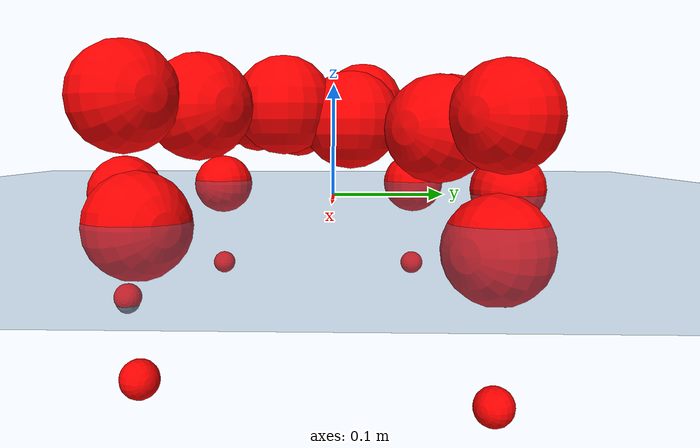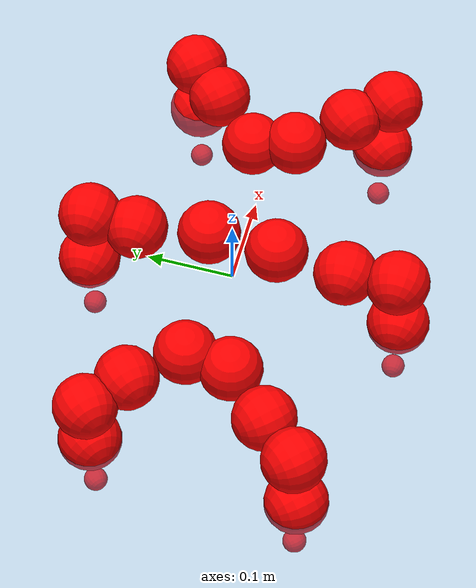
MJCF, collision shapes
<mujoco model="Golem">
  <compiler angle="radian" assetdir="assets" balanceinertia="true" inertiafromgeom="false"/>

  <option timestep="0.005" density="1.2" viscosity="2e-05"/>

  <size nkey="1"/>

  <visual>
    <quality shadowsize="8192"/>
    <map shadowclip="0.5"/>
  </visual>

  <default>
    <default class="/">
      <joint armature="0.01" damping="0.01" frictionloss="0.01"/>
      <geom contype="0" conaffinity="0" group="1" solref="-1000 -80"/>
      <site size="0.01 0.005 0.005" group="5"/>
      <general forcelimited="true" biastype="affine" gainprm="25" biasprm="0 -25 -0.5"/>
      <default class="visual">
        <geom type="mesh" group="2"/>
      </default>
      <default class="collision">
        <geom group="3"/>
      </default>
      <default class="foot">
        <geom size="0.01 0 0" condim="6" group="4" priority="1" solimp="0.015 1 0.01"/>
      </default>
      <default class="reward_collision_sphere">
        <geom group="5" rgba="1 0 0 1"/>
      </default>
    </default>
  </default>

  <asset>
    <texture type="skybox" colorspace="auto" name="//unnamed_texture_0" builtin="gradient" rgb1="0.95 0.95 0.95" rgb2="0.95 0.95 0.95" width="100" height="600"/>
    <texture type="2d" colorspace="auto" name="texplane" builtin="checker" rgb1="0.345 0.575 0.748" rgb2="0.345 0.575 0.748" markrgb="1 1 1" width="512" height="512"/>
    <material name="MatPlane" class="/" texture="texplane" texuniform="true" texrepeat="2 2" specular="0.9"/>
    <mesh name="body" class="/" file="body.stl" scale="0.001 0.001 0.001"/>
    <mesh name="coxa" class="/" file="coxa.stl" scale="0.001 0.001 0.001"/>
    <mesh name="femur" class="/" file="femur.stl" scale="0.001 0.001 0.001"/>
    <mesh name="tibia" class="/" file="tibia.stl" scale="0.001 0.001 0.001"/>
    <mesh name="tarsus" class="/" file="tarsus.stl" scale="0.001 0.001 0.001"/>
  </asset>

  <worldbody>
    <geom name="floor" class="/" size="100 100 0.125" type="plane" group="0" material="MatPlane"/>
    <light name="toplight_shadow" class="/" pos="0 0 5" dir="0.0990148 0.0990148 -0.990148" type="directional" ambient="0.04 0.04 0.04" diffuse="0.55 0.55 0.55" specular="0.12 0.12 0.12"/>
    <light name="toplight_fill" class="/" pos="0 0 5" dir="0.0990148 0.0990148 -0.990148" type="directional" castshadow="false" ambient="0.04 0.04 0.04" diffuse="0.3 0.3 0.3" specular="0.08 0.08 0.08"/>
    <body name="trunk" pos="-0.00306403 -0.00953533 -0.00547749" quat="1 -0.000820699 -0.000253642 -0.000212087">
      <inertial pos="0.00395515 0.00194352 0.0109552" quat="0.999983 -0.00274401 -0.00289932 0.00415844" mass="2.09733" diaginertia="0.00650708 0.00029131 0.0298687"/>
      <joint name="//unnamed_joint_0" type="free"/>
      <geom name="//unnamed_geom_1" class="/" pos="0 0 0.0793785" quat="1 0 0 0" type="mesh" rgba="0.9 0.9 0.9 1" mesh="body"/>
      <site name="imu" class="/" pos="0.116951 0.0304908 0.120177" size="0.00889395"/>
      <camera name="track" class="/" pos="0 -1.00419 0" quat="0.707107 0.707107 0 0" mode="trackcom"/>
      <camera name="ego_camera" class="/" pos="0.120354 0 0.124029" quat="-0.5 -0.5 0.5 0.5"/>
      <body name="coxa_RR" pos="-0.169025 -0.051076 0.073055" quat="0.384885 0.00338588 -0.00153907 -0.922957">
        <inertial pos="-0.000325275 0.0108633 -0.0103441" quat="0.999731 0.00577781 0.00446743 -0.0220047" mass="0.123851" diaginertia="0.00650734 0.0003236 0.029323"/>
        <joint name="coxa_joint_RR" class="/" pos="0 0 0" axis="-0.00571656 -0.00368013 -0.999977" range="-3.28693 3.14443" armature="0.0084655" damping="0.0200772" frictionloss="0.00880353"/>
        <geom name="//unnamed_geom_2" class="/" type="mesh" rgba="0.2 0.2 0.2 1" mesh="coxa"/>
        <geom name="//unnamed_geom_3" class="reward_collision_sphere" size="0.0355758" pos="-0.027774 0 0"/>
        <body name="femur_RR" pos="0.0443273 -0.000151234 0.00486963" quat="0.499774 -0.502096 0.501704 0.496406">
          <inertial pos="0.0074426 -0.00258471 0.00121432" quat="0.999996 0.00180802 -0.00199256 0.000460494" mass="0.135947" diaginertia="0.00655193 0.000303569 0.0280584"/>
          <joint name="femur_joint_RR" class="/" pos="0 0 0" axis="0.00910709 0.00381908 -0.999951" range="-3.01499 3.03463" armature="0.0122339" damping="0.0271498" frictionloss="0.00897003"/>
          <geom name="//unnamed_geom_4" class="/" type="mesh" rgba="0.9 0.9 0.9 1" mesh="femur"/>
          <geom name="//unnamed_geom_5" class="reward_collision_sphere" size="0.0355758"/>
          <body name="tibia_RR" pos="-0.00440408 -0.0598323 0.00105352" quat="0.000237542 1 -0.000314437 -0.000144706">
            <inertial pos="-0.00466406 0.00129537 -0.00104044" quat="0.99969 -0.00557023 -0.001746 0.0241842" mass="0.144888" diaginertia="0.00625718 0.000271431 0.0237016"/>
            <joint name="tibia_joint_RR" class="/" pos="0 0 0" axis="-0.0334334 0.00930256 0.999398" stiffness="0.0186116" range="-3.05599 3.38048" armature="0.00904167" damping="0" frictionloss="0.00892603"/>
            <geom name="//unnamed_geom_6" class="/" type="mesh" rgba="0.2 0.2 0.2 1" mesh="tibia"/>
            <geom name="//unnamed_geom_7" class="reward_collision_sphere" size="0.0355758"/>
            <body name="tarsus_RR" pos="0.0820579 0.00955064 0.000550765" quat="1 -0.000355064 -3.04206e-05 -5.98379e-05">
              <inertial pos="0.0480573 -0.0119605 0.00843861" quat="0.498339 0.505432 0.483649 0.512133" mass="0.123019" diaginertia="0.00636892 0.000250838 0.0258075"/>
              <joint name="tarsus_joint_RR" class="/" pos="0 0 0" axis="0.000189546 -0.0258689 0.999665" stiffness="0.00135254" range="-3.35265 3.16568" armature="0.00775059" damping="0.0421837" frictionloss="0.00683617"/>
              <geom name="//unnamed_geom_8" class="/" type="mesh" rgba="0.9 0.9 0.9 1" mesh="tarsus"/>
              <geom name="foot_1" class="foot" size="0.00776231" pos="0.103689 0 0" quat="0 -0.707107 0 0.707107"/>
              <geom name="//unnamed_geom_10" class="reward_collision_sphere" size="0.0355758"/>
              <geom name="//unnamed_geom_11" class="reward_collision_sphere" size="0.0133409" pos="0.0995233 0 0"/>
              <site name="foot_1" class="foot" pos="0.103689 0 0" quat="0 -0.707107 0 0.707107" size="0.00889395"/>
            </body>
          </body>
        </body>
      </body>
      <body name="coxa_RM" pos="-0.0011705 -0.0702488 0.0893868" quat="0.707536 0.000124811 -0.000438283 -0.706677">
        <inertial pos="-0.000145741 -0.00402702 -0.00197089" quat="0.999964 -0.00710853 -0.00252701 -0.00397756" mass="0.148845" diaginertia="0.00669898 0.000306941 0.0286819"/>
        <joint name="coxa_joint_RM" class="/" pos="0 0 0" axis="-0.0133302 -0.0109823 -0.999851" stiffness="0.0497208" range="-3.12296 3.17255" armature="0.00782865" damping="0.0300451" frictionloss="0.0140611"/>
        <geom name="//unnamed_geom_12" class="/" type="mesh" rgba="0.2 0.2 0.2 1" mesh="coxa"/>
        <geom name="//unnamed_geom_13" class="reward_collision_sphere" size="0.0355758" pos="-0.027774 0 0"/>
        <body name="femur_RM" pos="0.0520932 -0.00597474 -0.00398581" quat="0.499943 -0.500065 0.499919 0.500073">
          <inertial pos="-0.00197735 0.00487719 -0.00749063" quat="0.999984 0.00190644 0.00291833 0.00453847" mass="0.13724" diaginertia="0.00754301 0.000325231 0.0285462"/>
          <joint name="femur_joint_RM" class="/" pos="0 0 0" axis="-0.0020118 0.00491637 -0.999986" range="-3.16514 3.23202" armature="0.00852987" damping="0.0425467" frictionloss="0.00815898"/>
          <geom name="//unnamed_geom_14" class="/" type="mesh" rgba="0.9 0.9 0.9 1" mesh="femur"/>
          <geom name="//unnamed_geom_15" class="reward_collision_sphere" size="0.0355758"/>
          <body name="tibia_RM" pos="-0.0058481 -0.0590796 -0.00054047" quat="-3.36131e-05 1 0.000100716 0.000148928">
            <inertial pos="0.0108644 0.0097506 -0.00249929" quat="0.998472 0.00381117 -0.0419205 -0.0358013" mass="0.142055" diaginertia="0.00657944 0.000313878 0.0328907"/>
            <joint name="tibia_joint_RM" class="/" pos="0 0 0" axis="0.000552582 0.000331465 1" range="-3.10983 3.05522" armature="0.00663071" damping="0" frictionloss="0.00653528"/>
            <geom name="//unnamed_geom_16" class="/" type="mesh" rgba="0.2 0.2 0.2 1" mesh="tibia"/>
            <geom name="//unnamed_geom_17" class="reward_collision_sphere" size="0.0355758"/>
            <body name="tarsus_RM" pos="0.0862026 0.00481119 -0.00138893" quat="1 -0.000386703 -0.000468336 -0.000264201">
              <inertial pos="0.054782 0.00183766 0.000525492" quat="0.500451 0.496286 0.502209 0.501034" mass="0.129921" diaginertia="0.00601906 0.000294987 0.0268629"/>
              <joint name="tarsus_joint_RM" class="/" pos="0 0 0" axis="-0.00277754 0.00560592 0.99998" stiffness="0.0183304" range="-3.13201 3.10286" armature="0.0136408" damping="0" frictionloss="0.00919843"/>
              <geom name="//unnamed_geom_18" class="/" type="mesh" rgba="0.9 0.9 0.9 1" mesh="tarsus"/>
              <geom name="foot_2" class="foot" size="0.0114858" pos="0.103689 0 0" quat="0 -0.707107 0 0.707107"/>
              <geom name="//unnamed_geom_20" class="reward_collision_sphere" size="0.0355758"/>
              <geom name="//unnamed_geom_21" class="reward_collision_sphere" size="0.0133409" pos="0.0995233 0 0"/>
              <site name="foot_2" class="foot" pos="0.103689 0 0" quat="0 -0.707107 0 0.707107" size="0.00889395"/>
            </body>
          </body>
        </body>
      </body>
      <body name="coxa_RF" pos="0.169244 -0.0443586 0.0808936" quat="0.923964 -3.00273e-05 -0.000101707 -0.382479">
        <inertial pos="-0.0086426 0.000285296 -0.000679103" quat="0.999998 -0.000629002 0.000881918 0.001712" mass="0.139641" diaginertia="0.00599747 0.000320962 0.0332142"/>
        <joint name="coxa_joint_RF" class="/" pos="0 0 0" axis="0.00161896 -0.000398003 -0.999999" stiffness="0.0113216" range="-3.02505 3.12682" armature="0.0110071" damping="0.0250382" frictionloss="0.00844039"/>
        <geom name="//unnamed_geom_22" class="/" type="mesh" rgba="0.2 0.2 0.2 1" mesh="coxa"/>
        <geom name="//unnamed_geom_23" class="reward_collision_sphere" size="0.0355758" pos="-0.027774 0 0"/>
        <body name="femur_RF" pos="0.0449098 -0.000918229 -0.00329205" quat="0.49969 -0.500677 0.49933 0.500302">
          <inertial pos="-0.0022255 0.000150906 0.00782082" quat="0.999962 -0.0065164 0.00521173 -0.00245798" mass="0.15157" diaginertia="0.00707193 0.000271188 0.0289367"/>
          <joint name="femur_joint_RF" class="/" pos="0 0 0" axis="-0.00357 0.00167034 -0.999992" stiffness="0.0298381" range="-3.31655 3.10183" armature="0.00610172" damping="0.040114" frictionloss="0.00765116"/>
          <geom name="//unnamed_geom_24" class="/" type="mesh" rgba="0.9 0.9 0.9 1" mesh="femur"/>
          <geom name="//unnamed_geom_25" class="reward_collision_sphere" size="0.0355758"/>
          <body name="tibia_RF" pos="-0.00471612 -0.0526401 -0.00502724" quat="0.000176526 1 0.000102374 0.00037279">
            <inertial pos="-0.0027416 -0.00602728 0.00205923" quat="0.99996 0.00802129 -0.00187117 0.00358367" mass="0.144956" diaginertia="0.00590989 0.000346603 0.0269884"/>
            <joint name="tibia_joint_RF" class="/" pos="0 0 0" axis="-0.00166022 -0.00130013 0.999998" range="-3.12188 3.15346" armature="0.00749356" damping="0.0110198" frictionloss="0.0124405"/>
            <geom name="//unnamed_geom_26" class="/" type="mesh" rgba="0.2 0.2 0.2 1" mesh="tibia"/>
            <geom name="//unnamed_geom_27" class="reward_collision_sphere" size="0.0355758"/>
            <body name="tarsus_RF" pos="0.0812261 -0.00978603 0.00246985" quat="0.999987 -0.00459933 0.00123353 0.00195658">
              <inertial pos="0.0594854 0.010634 0.000939711" quat="0.471057 0.485978 0.491686 0.547883" mass="0.151791" diaginertia="0.00585788 0.000358119 0.0290313"/>
              <joint name="tarsus_joint_RF" class="/" pos="0 0 0" axis="0.0374717 -0.00409976 0.999289" stiffness="0.0474615" range="-3.34658 3.12369" armature="0.00387766" damping="0" frictionloss="0.00896426"/>
              <geom name="//unnamed_geom_28" class="/" type="mesh" rgba="0.9 0.9 0.9 1" mesh="tarsus"/>
              <geom name="foot_3" class="foot" size="0.00941553" pos="0.103689 0 0" quat="0 -0.707107 0 0.707107"/>
              <geom name="//unnamed_geom_30" class="reward_collision_sphere" size="0.0355758"/>
              <geom name="//unnamed_geom_31" class="reward_collision_sphere" size="0.0133409" pos="0.0995233 0 0"/>
              <site name="foot_3" class="foot" pos="0.103689 0 0" quat="0 -0.707107 0 0.707107" size="0.00889395"/>
            </body>
          </body>
        </body>
      </body>
      <body name="coxa_LR" pos="-0.163328 0.0406014 0.0749323" quat="0.384245 0.000155869 -0.000179081 0.923231">
        <inertial pos="0.00186086 0.011046 -0.00144758" quat="0.999224 0.0291375 0.0257007 -0.00646094" mass="0.156334" diaginertia="0.00772928 0.000316203 0.0340512"/>
        <joint name="coxa_joint_LR" class="/" pos="0 0 0" axis="0.0203856 0.00330606 -0.999787" stiffness="0.0324885" range="-3.0606 2.92919" armature="0.0131921" damping="0" frictionloss="0.0088478"/>
        <geom name="//unnamed_geom_32" class="/" type="mesh" rgba="0.2 0.2 0.2 1" mesh="coxa"/>
        <geom name="//unnamed_geom_33" class="reward_collision_sphere" size="0.0355758" pos="-0.027774 0 0"/>
        <body name="femur_LR" pos="0.0432616 -0.00137349 0.00438055" quat="0.502966 -0.499291 0.498649 0.499083">
          <inertial pos="-0.00197432 0.00138368 -0.00058311" quat="0.998649 -0.00170334 0.051834 0.00320823" mass="0.15016" diaginertia="0.00691816 0.000320949 0.0249931"/>
          <joint name="femur_joint_LR" class="/" pos="0 0 0" axis="0.0192894 0.0113359 0.99975" stiffness="0.0408052" range="-3.37013 3.29696" armature="0.00679061" damping="0.0375387" frictionloss="0.00860738"/>
          <geom name="//unnamed_geom_34" class="/" type="mesh" rgba="0.9 0.9 0.9 1" mesh="femur"/>
          <geom name="//unnamed_geom_35" class="reward_collision_sphere" size="0.0355758"/>
          <body name="tibia_LR" pos="0.00583702 -0.0535607 0.00616693" quat="-0.00147048 0.999997 0.00149283 -0.00113832">
            <inertial pos="-0.000768051 0.0103472 -0.00627468" quat="0.999633 0.0190649 -0.00285904 -0.0190364" mass="0.144473" diaginertia="0.00640402 0.000310265 0.0303054"/>
            <joint name="tibia_joint_LR" class="/" pos="0 0 0" axis="0.00246092 0.00341701 -0.999991" stiffness="0.00508271" range="-2.98016 3.03653" armature="0.010985" damping="0.0721609" frictionloss="0.00633757"/>
            <geom name="//unnamed_geom_36" class="/" type="mesh" rgba="0.2 0.2 0.2 1" mesh="tibia"/>
            <geom name="//unnamed_geom_37" class="reward_collision_sphere" size="0.0355758"/>
            <body name="tarsus_LR" pos="0.0705729 -0.000170284 -0.00211057" quat="0.99999 -0.00303939 0.00122477 -0.00296051">
              <inertial pos="0.0510346 0.000100076 0.000409949" quat="0.485077 0.501331 0.488795 0.523878" mass="0.132816" diaginertia="0.0063592 0.000293678 0.0272382"/>
              <joint name="tarsus_joint_LR" class="/" pos="0 0 0" axis="-0.00498144 -0.0071917 -0.999962" stiffness="0.0431038" range="-2.95888 3.1705" armature="0.00877544" damping="0.0304356" frictionloss="0.0130966"/>
              <geom name="//unnamed_geom_38" class="/" type="mesh" rgba="0.9 0.9 0.9 1" mesh="tarsus"/>
              <geom name="foot_4" class="foot" size="0.00920255" pos="0.103689 0 0" quat="0.707107 0 -0.707107 0"/>
              <geom name="//unnamed_geom_40" class="reward_collision_sphere" size="0.0355758"/>
              <geom name="//unnamed_geom_41" class="reward_collision_sphere" size="0.0133409" pos="0.0995233 0 0"/>
              <site name="foot_4" class="foot" pos="0.103689 0 0" quat="0.707107 0 -0.707107 0" size="0.00889395"/>
            </body>
          </body>
        </body>
      </body>
      <body name="coxa_LM" pos="0.00234726 0.0635771 0.0887122" quat="0.706687 -0.00234733 0.000228608 0.707522">
        <inertial pos="0.00875049 0.00183404 0.00752955" quat="0.999983 0.00533789 -0.00212403 -0.000607957" mass="0.143587" diaginertia="0.00761393 0.000365566 0.0260602"/>
        <joint name="coxa_joint_LM" class="/" pos="0 0 0" axis="-0.000238707 0.000309951 -1" range="-3.13458 3.11712" armature="0.00462893" damping="0.0591937" frictionloss="0.0115777"/>
        <geom name="//unnamed_geom_42" class="/" type="mesh" rgba="0.2 0.2 0.2 1" mesh="coxa"/>
        <geom name="//unnamed_geom_43" class="reward_collision_sphere" size="0.0355758" pos="-0.027774 0 0"/>
        <body name="femur_LM" pos="0.0537714 0.00990905 -0.00771478" quat="0.499718 -0.499909 0.500456 0.499917">
          <inertial pos="-0.00770244 -0.00442594 -0.00953702" quat="0.999961 -0.00544131 -0.00416345 -0.00553692" mass="0.141065" diaginertia="0.00644713 0.000314158 0.0304043"/>
          <joint name="femur_joint_LM" class="/" pos="0 0 0" axis="-0.00199749 -0.0107563 0.99994" range="-3.1267 3.29096" armature="0.00700077" damping="0.02874" frictionloss="0.00606447"/>
          <geom name="//unnamed_geom_44" class="/" type="mesh" rgba="0.9 0.9 0.9 1" mesh="femur"/>
          <geom name="//unnamed_geom_45" class="reward_collision_sphere" size="0.0355758"/>
          <body name="tibia_LM" pos="-0.00605082 -0.0535756 0.00071673" quat="-0.000561975 1 -0.000214794 0.000623383">
            <inertial pos="0.00540974 0.010781 -0.0115587" quat="0.998293 0.0140804 0.00903438 0.0559521" mass="0.147434" diaginertia="0.00657138 0.000329063 0.0322199"/>
            <joint name="tibia_joint_LM" class="/" pos="0 0 0" axis="-0.00314466 -0.0368122 -0.999317" stiffness="0.0555686" range="-3.16931 3.32895" armature="0.00758494" damping="0.00978253" frictionloss="0.00835024"/>
            <geom name="//unnamed_geom_46" class="/" type="mesh" rgba="0.2 0.2 0.2 1" mesh="tibia"/>
            <geom name="//unnamed_geom_47" class="reward_collision_sphere" size="0.0355758"/>
            <body name="tarsus_LM" pos="0.0770056 0.00256559 -0.00930581" quat="0.999999 0.000932874 0.000925116 7.90255e-05">
              <inertial pos="0.0594795 0.00179946 0.00852852" quat="0.460103 0.51705 0.490415 0.529582" mass="0.131645" diaginertia="0.00704118 0.000366874 0.0331979"/>
              <joint name="tarsus_joint_LM" class="/" pos="0 0 0" axis="0.00222558 -0.044463 -0.999009" stiffness="0.0399812" range="-3.17427 3.3233" armature="0.0106246" damping="0" frictionloss="0.00913673"/>
              <geom name="//unnamed_geom_48" class="/" type="mesh" rgba="0.9 0.9 0.9 1" mesh="tarsus"/>
              <geom name="foot_5" class="foot" size="0.00917184" pos="0.103689 0 0" quat="0.707107 0 -0.707107 0"/>
              <geom name="//unnamed_geom_50" class="reward_collision_sphere" size="0.0355758"/>
              <geom name="//unnamed_geom_51" class="reward_collision_sphere" size="0.0133409" pos="0.0995233 0 0"/>
              <site name="foot_5" class="foot" pos="0.103689 0 0" quat="0.707107 0 -0.707107 0" size="0.00889395"/>
            </body>
          </body>
        </body>
      </body>
      <body name="coxa_LF" pos="0.16253 0.0436588 0.070219" quat="0.92266 -0.00267668 0.00269555 0.385595">
        <inertial pos="-0.00147455 0.000984157 -0.00307312" quat="0.998306 -0.0576191 0.00748598 -0.00290675" mass="0.122176" diaginertia="0.0071494 0.000279314 0.0334868"/>
        <joint name="coxa_joint_LF" class="/" pos="0 0 0" axis="-0.00109365 0.010051 -0.999949" stiffness="0.0441347" range="-3.1324 3.12374" armature="0.00992473" damping="0.0313573" frictionloss="0.00879553"/>
        <geom name="//unnamed_geom_52" class="/" type="mesh" rgba="0.2 0.2 0.2 1" mesh="coxa"/>
        <geom name="//unnamed_geom_53" class="reward_collision_sphere" size="0.0355758" pos="-0.027774 0 0"/>
        <body name="femur_LF" pos="0.0540208 -0.00261132 -0.00659038" quat="0.500639 -0.499966 0.498706 0.500687">
          <inertial pos="-0.00908553 0.00205513 -0.010482" quat="0.99992 0.0109814 0.00279609 0.00561037" mass="0.15796" diaginertia="0.00741523 0.000316767 0.0318076"/>
          <joint name="femur_joint_LF" class="/" pos="0 0 0" axis="-0.0280622 -0.00308415 0.999601" stiffness="0.00159821" range="-3.16384 2.90225" armature="0.00560391" damping="0.0382694" frictionloss="0.00959313"/>
          <geom name="//unnamed_geom_54" class="/" type="mesh" rgba="0.9 0.9 0.9 1" mesh="femur"/>
          <geom name="//unnamed_geom_55" class="reward_collision_sphere" size="0.0355758"/>
          <body name="tibia_LF" pos="-0.00745593 -0.0484457 0.00315666" quat="-0.00293574 0.999995 8.9763e-05 0.00111991">
            <inertial pos="0.00104117 -0.00099535 0.000598055" quat="0.999961 0.00214431 -0.00632534 0.00578309" mass="0.139763" diaginertia="0.0066165 0.000323685 0.0293426"/>
            <joint name="tibia_joint_LF" class="/" pos="0 0 0" axis="0.0399254 0.000483796 -0.999203" range="-3.07918 3.00762" armature="0.0132556" damping="0" frictionloss="0.0079985"/>
            <geom name="//unnamed_geom_56" class="/" type="mesh" rgba="0.2 0.2 0.2 1" mesh="tibia"/>
            <geom name="//unnamed_geom_57" class="reward_collision_sphere" size="0.0355758"/>
            <body name="tarsus_LF" pos="0.082333 -0.00284816 0.0012369" quat="0.999999 -0.000231946 -0.000815056 0.00122482">
              <inertial pos="0.0637076 -0.00248182 0.000526624" quat="0.497741 0.500593 0.503893 0.497747" mass="0.155562" diaginertia="0.00720863 0.000341243 0.0294035"/>
              <joint name="tarsus_joint_LF" class="/" pos="0 0 0" axis="0.0194675 0.00488389 -0.999799" stiffness="0.0284764" range="-2.94205 2.93247" armature="0.00859979" damping="0.0286611" frictionloss="0.00824286"/>
              <geom name="//unnamed_geom_58" class="/" type="mesh" rgba="0.9 0.9 0.9 1" mesh="tarsus"/>
              <geom name="foot_6" class="foot" size="0.00784691" pos="0.103689 0 0" quat="0.707107 0 -0.707107 0"/>
              <geom name="//unnamed_geom_60" class="reward_collision_sphere" size="0.0355758"/>
              <geom name="//unnamed_geom_61" class="reward_collision_sphere" size="0.0133409" pos="0.0995233 0 0"/>
              <site name="foot_6" class="foot" pos="0.103689 0 0" quat="0.707107 0 -0.707107 0" size="0.00889395"/>
            </body>
          </body>
        </body>
      </body>
    </body>
  </worldbody>

  <contact>
    <pair class="/" geom1="floor" geom2="foot_1" name="//unnamed_contact_0"/>
    <pair class="/" geom1="floor" geom2="foot_2" name="//unnamed_contact_1"/>
    <pair class="/" geom1="floor" geom2="foot_3" name="//unnamed_contact_2"/>
    <pair class="/" geom1="floor" geom2="foot_4" name="//unnamed_contact_3"/>
    <pair class="/" geom1="floor" geom2="foot_5" name="//unnamed_contact_4"/>
    <pair class="/" geom1="floor" geom2="foot_6" name="//unnamed_contact_5"/>
  </contact>

  <actuator>
    <general name="coxa_joint_RR" class="/" joint="coxa_joint_RR" forcerange="-5.65916 5.65916" gainprm="21.1011" biasprm="0 -21.1011 -0.404555"/>
    <general name="femur_joint_RR" class="/" joint="femur_joint_RR" forcerange="-7.58067 7.58067" gainprm="21.1011" biasprm="0 -21.1011 -0.404555"/>
    <general name="tibia_joint_RR" class="/" joint="tibia_joint_RR" forcerange="-9.11744 9.11744" gainprm="21.1011" biasprm="0 -21.1011 -0.404555"/>
    <general name="tarsus_joint_RR" class="/" joint="tarsus_joint_RR" forcerange="-7.95257 7.95257" gainprm="21.1011" biasprm="0 -21.1011 -0.404555"/>
    <general name="coxa_joint_RM" class="/" joint="coxa_joint_RM" forcerange="-6.52736 6.52736" gainprm="21.1011" biasprm="0 -21.1011 -0.404555"/>
    <general name="femur_joint_RM" class="/" joint="femur_joint_RM" forcerange="-6.88012 6.88012" gainprm="21.1011" biasprm="0 -21.1011 -0.404555"/>
    <general name="tibia_joint_RM" class="/" joint="tibia_joint_RM" forcerange="-9.33386 9.33386" gainprm="21.1011" biasprm="0 -21.1011 -0.404555"/>
    <general name="tarsus_joint_RM" class="/" joint="tarsus_joint_RM" forcerange="-6.94254 6.94254" gainprm="21.1011" biasprm="0 -21.1011 -0.404555"/>
    <general name="coxa_joint_RF" class="/" joint="coxa_joint_RF" forcerange="-6.12769 6.12769" gainprm="21.1011" biasprm="0 -21.1011 -0.404555"/>
    <general name="femur_joint_RF" class="/" joint="femur_joint_RF" forcerange="-3.64853 3.64853" gainprm="21.1011" biasprm="0 -21.1011 -0.404555"/>
    <general name="tibia_joint_RF" class="/" joint="tibia_joint_RF" forcerange="-5.40917 5.40917" gainprm="21.1011" biasprm="0 -21.1011 -0.404555"/>
    <general name="tarsus_joint_RF" class="/" joint="tarsus_joint_RF" forcerange="-3.6714 3.6714" gainprm="21.1011" biasprm="0 -21.1011 -0.404555"/>
    <general name="coxa_joint_LR" class="/" joint="coxa_joint_LR" forcerange="-8.54961 8.54961" gainprm="21.1011" biasprm="0 -21.1011 -0.404555"/>
    <general name="femur_joint_LR" class="/" joint="femur_joint_LR" forcerange="-5.79395 5.79395" gainprm="21.1011" biasprm="0 -21.1011 -0.404555"/>
    <general name="tibia_joint_LR" class="/" joint="tibia_joint_LR" forcerange="-5.18092 5.18092" gainprm="21.1011" biasprm="0 -21.1011 -0.404555"/>
    <general name="tarsus_joint_LR" class="/" joint="tarsus_joint_LR" forcerange="-6.10799 6.10799" gainprm="21.1011" biasprm="0 -21.1011 -0.404555"/>
    <general name="coxa_joint_LM" class="/" joint="coxa_joint_LM" forcerange="-5.48345 5.48345" gainprm="21.1011" biasprm="0 -21.1011 -0.404555"/>
    <general name="femur_joint_LM" class="/" joint="femur_joint_LM" forcerange="-6.45239 6.45239" gainprm="21.1011" biasprm="0 -21.1011 -0.404555"/>
    <general name="tibia_joint_LM" class="/" joint="tibia_joint_LM" forcerange="-8.9603 8.9603" gainprm="21.1011" biasprm="0 -21.1011 -0.404555"/>
    <general name="tarsus_joint_LM" class="/" joint="tarsus_joint_LM" forcerange="-8.1362 8.1362" gainprm="21.1011" biasprm="0 -21.1011 -0.404555"/>
    <general name="coxa_joint_LF" class="/" joint="coxa_joint_LF" forcerange="-5.8731 5.8731" gainprm="21.1011" biasprm="0 -21.1011 -0.404555"/>
    <general name="femur_joint_LF" class="/" joint="femur_joint_LF" forcerange="-8.63684 8.63684" gainprm="21.1011" biasprm="0 -21.1011 -0.404555"/>
    <general name="tibia_joint_LF" class="/" joint="tibia_joint_LF" forcerange="-6.92424 6.92424" gainprm="21.1011" biasprm="0 -21.1011 -0.404555"/>
    <general name="tarsus_joint_LF" class="/" joint="tarsus_joint_LF" forcerange="-6.59814 6.59814" gainprm="21.1011" biasprm="0 -21.1011 -0.404555"/>
  </actuator>

  <sensor>
    <gyro site="imu" name="imu_angular_velocity"/>
    <velocimeter site="imu" name="imu_linear_velocity"/>
    <framelinvel objtype="site" objname="foot_1" name="foot_1_global_linear_velocity"/>
    <framelinvel objtype="site" objname="foot_2" name="foot_2_global_linear_velocity"/>
    <framelinvel objtype="site" objname="foot_3" name="foot_3_global_linear_velocity"/>
    <framelinvel objtype="site" objname="foot_4" name="foot_4_global_linear_velocity"/>
    <framelinvel objtype="site" objname="foot_5" name="foot_5_global_linear_velocity"/>
    <framelinvel objtype="site" objname="foot_6" name="foot_6_global_linear_velocity"/>
  </sensor>

  <keyframe>
    <key name="home" qpos="0 0 0.1457 1 0 0 0 0 0 0 0 0 0 0 0 0 0 0 0 0 0 0 0 0 0 0 0 0 0 0 0"/>
  </keyframe>
</mujoco>
